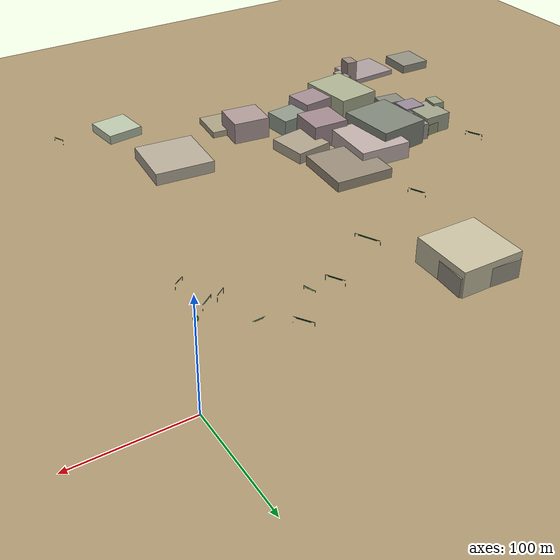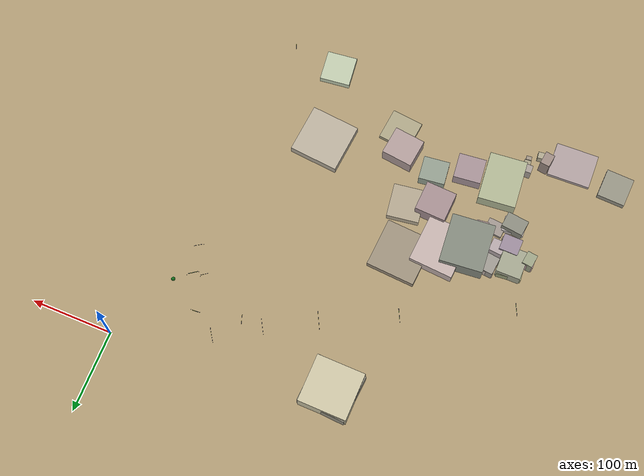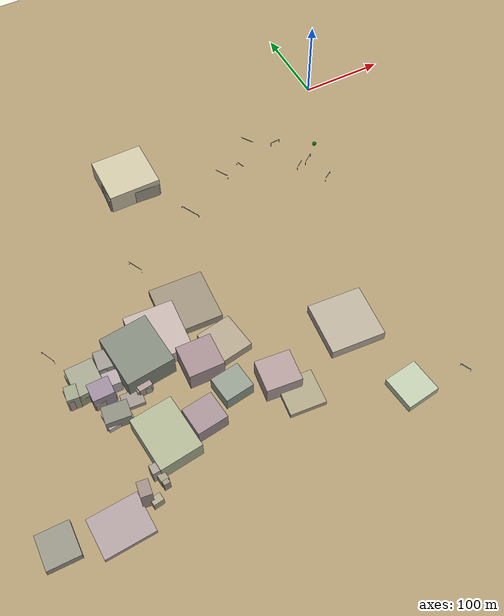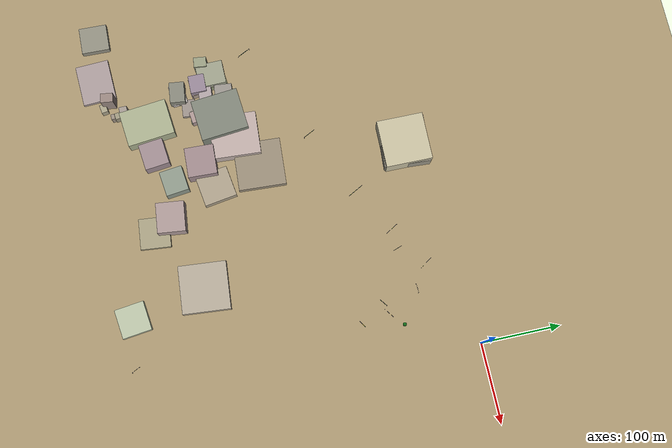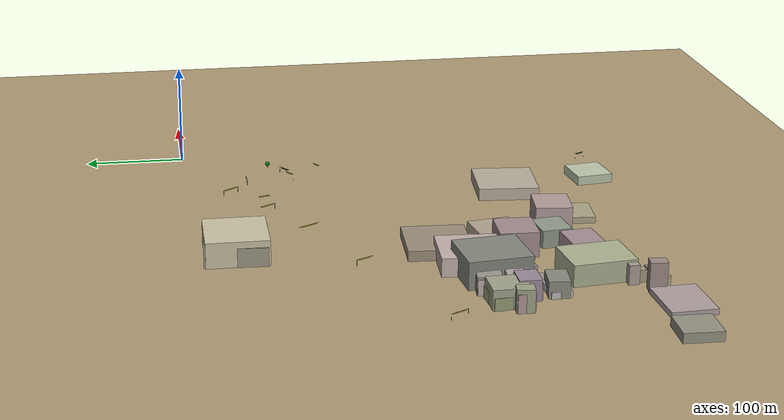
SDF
<sdf version="1.9">
 <world name="crossroad_world">
  <model name="ground_plane">
   <static>true</static>
   <pose>0 0 -0.05 0 0 0</pose>
   <link name="link">
    <collision name="collision">
     <geometry><plane><normal>0 0 1</normal><size>10000 10000</size></plane></geometry>
    </collision>
    <visual name="visual">
     <geometry><plane><normal>0 0 1</normal><size>15000 15000</size></plane></geometry>
     <material><ambient>0.68 0.60 0.45 1</ambient><diffuse>0.68 0.60 0.45 1</diffuse></material>
    </visual>
   </link>
  </model>
  <model name="gantry_24">
   <static>true</static>
   <pose>-136.055 -73.857 0 0 0 1.902</pose>
   <link name="link">
    <visual name="post_l">
     <pose>-5.700 0 2.925 0 0 0</pose>
     <geometry><cylinder><radius>0.1</radius><length>5.85</length></cylinder></geometry>
     <material><ambient>0.30 0.30 0.35 1</ambient><diffuse>0.30 0.30 0.35 1</diffuse></material>
    </visual>
    <visual name="post_r">
     <pose>5.700 0 2.925 0 0 0</pose>
     <geometry><cylinder><radius>0.1</radius><length>5.85</length></cylinder></geometry>
     <material><ambient>0.30 0.30 0.35 1</ambient><diffuse>0.30 0.30 0.35 1</diffuse></material>
    </visual>
    <visual name="beam">
     <pose>0 0 6.000 0 0 0</pose>
     <geometry><box><size>11.400 0.22 0.22</size></box></geometry>
     <material><ambient>0.30 0.30 0.35 1</ambient><diffuse>0.30 0.30 0.35 1</diffuse></material>
    </visual>
    <visual name="sign_border">
     <pose>0 -0.14 5.450 0 0 0</pose>
     <geometry><box><size>8.288 0.04 0.92</size></box></geometry>
     <material><ambient>0.90 0.85 0.10 1</ambient><diffuse>0.90 0.85 0.10 1</diffuse></material>
    </visual>
    <visual name="sign_panel">
     <pose>0 -0.15 5.450 0 0 0</pose>
     <geometry><box><size>8.208 0.05 0.86</size></box></geometry>
     <material><ambient>0.05 0.38 0.10 1</ambient><diffuse>0.05 0.38 0.10 1</diffuse></material>
    </visual>
    <collision name="col_post_l">
     <pose>-5.700 0 2.925 0 0 0</pose>
     <geometry><cylinder><radius>0.1</radius><length>5.85</length></cylinder></geometry>
    </collision>
    <collision name="col_post_r">
     <pose>5.700 0 2.925 0 0 0</pose>
     <geometry><cylinder><radius>0.1</radius><length>5.85</length></cylinder></geometry>
    </collision>
    <collision name="col_beam">
     <pose>0 0 6.000 0 0 0</pose>
     <geometry><box><size>11.400 0.22 0.22</size></box></geometry>
    </collision>
   </link>
  </model>
  <model name="gantry_25">
   <static>true</static>
   <pose>-73.724 -106.425 0 0 0 0.639</pose>
   <link name="link">
    <visual name="post_l">
     <pose>-5.700 0 2.925 0 0 0</pose>
     <geometry><cylinder><radius>0.1</radius><length>5.85</length></cylinder></geometry>
     <material><ambient>0.30 0.30 0.35 1</ambient><diffuse>0.30 0.30 0.35 1</diffuse></material>
    </visual>
    <visual name="post_r">
     <pose>5.700 0 2.925 0 0 0</pose>
     <geometry><cylinder><radius>0.1</radius><length>5.85</length></cylinder></geometry>
     <material><ambient>0.30 0.30 0.35 1</ambient><diffuse>0.30 0.30 0.35 1</diffuse></material>
    </visual>
    <visual name="beam">
     <pose>0 0 6.000 0 0 0</pose>
     <geometry><box><size>11.400 0.22 0.22</size></box></geometry>
     <material><ambient>0.30 0.30 0.35 1</ambient><diffuse>0.30 0.30 0.35 1</diffuse></material>
    </visual>
    <visual name="sign_border">
     <pose>0 -0.14 5.450 0 0 0</pose>
     <geometry><box><size>8.288 0.04 0.92</size></box></geometry>
     <material><ambient>0.90 0.85 0.10 1</ambient><diffuse>0.90 0.85 0.10 1</diffuse></material>
    </visual>
    <visual name="sign_panel">
     <pose>0 -0.15 5.450 0 0 0</pose>
     <geometry><box><size>8.208 0.05 0.86</size></box></geometry>
     <material><ambient>0.05 0.38 0.10 1</ambient><diffuse>0.05 0.38 0.10 1</diffuse></material>
    </visual>
    <collision name="col_post_l">
     <pose>-5.700 0 2.925 0 0 0</pose>
     <geometry><cylinder><radius>0.1</radius><length>5.85</length></cylinder></geometry>
    </collision>
    <collision name="col_post_r">
     <pose>5.700 0 2.925 0 0 0</pose>
     <geometry><cylinder><radius>0.1</radius><length>5.85</length></cylinder></geometry>
    </collision>
    <collision name="col_beam">
     <pose>0 0 6.000 0 0 0</pose>
     <geometry><box><size>11.400 0.22 0.22</size></box></geometry>
    </collision>
   </link>
  </model>
  <model name="gantry_26">
   <static>true</static>
   <pose>-52.633 -136.867 0 0 0 0.580</pose>
   <link name="link">
    <visual name="post_l">
     <pose>-5.700 0 2.925 0 0 0</pose>
     <geometry><cylinder><radius>0.1</radius><length>5.85</length></cylinder></geometry>
     <material><ambient>0.30 0.30 0.35 1</ambient><diffuse>0.30 0.30 0.35 1</diffuse></material>
    </visual>
    <visual name="post_r">
     <pose>5.700 0 2.925 0 0 0</pose>
     <geometry><cylinder><radius>0.1</radius><length>5.85</length></cylinder></geometry>
     <material><ambient>0.30 0.30 0.35 1</ambient><diffuse>0.30 0.30 0.35 1</diffuse></material>
    </visual>
    <visual name="beam">
     <pose>0 0 6.000 0 0 0</pose>
     <geometry><box><size>11.400 0.22 0.22</size></box></geometry>
     <material><ambient>0.30 0.30 0.35 1</ambient><diffuse>0.30 0.30 0.35 1</diffuse></material>
    </visual>
    <visual name="sign_border">
     <pose>0 -0.14 5.450 0 0 0</pose>
     <geometry><box><size>8.288 0.04 0.92</size></box></geometry>
     <material><ambient>0.90 0.85 0.10 1</ambient><diffuse>0.90 0.85 0.10 1</diffuse></material>
    </visual>
    <visual name="sign_panel">
     <pose>0 -0.15 5.450 0 0 0</pose>
     <geometry><box><size>8.208 0.05 0.86</size></box></geometry>
     <material><ambient>0.05 0.38 0.10 1</ambient><diffuse>0.05 0.38 0.10 1</diffuse></material>
    </visual>
    <collision name="col_post_l">
     <pose>-5.700 0 2.925 0 0 0</pose>
     <geometry><cylinder><radius>0.1</radius><length>5.85</length></cylinder></geometry>
    </collision>
    <collision name="col_post_r">
     <pose>5.700 0 2.925 0 0 0</pose>
     <geometry><cylinder><radius>0.1</radius><length>5.85</length></cylinder></geometry>
    </collision>
    <collision name="col_beam">
     <pose>0 0 6.000 0 0 0</pose>
     <geometry><box><size>11.400 0.22 0.22</size></box></geometry>
    </collision>
   </link>
  </model>
  <model name="gantry_31">
   <static>true</static>
   <pose>-59.800 -102.755 0 0 0 3.768</pose>
   <link name="link">
    <visual name="post_l">
     <pose>-7.300 0 2.925 0 0 0</pose>
     <geometry><cylinder><radius>0.1</radius><length>5.85</length></cylinder></geometry>
     <material><ambient>0.30 0.30 0.35 1</ambient><diffuse>0.30 0.30 0.35 1</diffuse></material>
    </visual>
    <visual name="post_r">
     <pose>7.300 0 2.925 0 0 0</pose>
     <geometry><cylinder><radius>0.1</radius><length>5.85</length></cylinder></geometry>
     <material><ambient>0.30 0.30 0.35 1</ambient><diffuse>0.30 0.30 0.35 1</diffuse></material>
    </visual>
    <visual name="beam">
     <pose>0 0 6.000 0 0 0</pose>
     <geometry><box><size>14.600 0.22 0.22</size></box></geometry>
     <material><ambient>0.30 0.30 0.35 1</ambient><diffuse>0.30 0.30 0.35 1</diffuse></material>
    </visual>
    <visual name="sign_border">
     <pose>0 -0.14 5.450 0 0 0</pose>
     <geometry><box><size>10.592 0.04 0.92</size></box></geometry>
     <material><ambient>0.90 0.85 0.10 1</ambient><diffuse>0.90 0.85 0.10 1</diffuse></material>
    </visual>
    <visual name="sign_panel">
     <pose>0 -0.15 5.450 0 0 0</pose>
     <geometry><box><size>10.512 0.05 0.86</size></box></geometry>
     <material><ambient>0.05 0.38 0.10 1</ambient><diffuse>0.05 0.38 0.10 1</diffuse></material>
    </visual>
    <collision name="col_post_l">
     <pose>-7.300 0 2.925 0 0 0</pose>
     <geometry><cylinder><radius>0.1</radius><length>5.85</length></cylinder></geometry>
    </collision>
    <collision name="col_post_r">
     <pose>7.300 0 2.925 0 0 0</pose>
     <geometry><cylinder><radius>0.1</radius><length>5.85</length></cylinder></geometry>
    </collision>
    <collision name="col_beam">
     <pose>0 0 6.000 0 0 0</pose>
     <geometry><box><size>14.600 0.22 0.22</size></box></geometry>
    </collision>
   </link>
  </model>
  <model name="gantry_32">
   <static>true</static>
   <pose>-82.200 -61.302 0 0 0 3.200</pose>
   <link name="link">
    <visual name="post_l">
     <pose>-5.700 0 2.925 0 0 0</pose>
     <geometry><cylinder><radius>0.1</radius><length>5.85</length></cylinder></geometry>
     <material><ambient>0.30 0.30 0.35 1</ambient><diffuse>0.30 0.30 0.35 1</diffuse></material>
    </visual>
    <visual name="post_r">
     <pose>5.700 0 2.925 0 0 0</pose>
     <geometry><cylinder><radius>0.1</radius><length>5.85</length></cylinder></geometry>
     <material><ambient>0.30 0.30 0.35 1</ambient><diffuse>0.30 0.30 0.35 1</diffuse></material>
    </visual>
    <visual name="beam">
     <pose>0 0 6.000 0 0 0</pose>
     <geometry><box><size>11.400 0.22 0.22</size></box></geometry>
     <material><ambient>0.30 0.30 0.35 1</ambient><diffuse>0.30 0.30 0.35 1</diffuse></material>
    </visual>
    <visual name="sign_border">
     <pose>0 -0.14 5.450 0 0 0</pose>
     <geometry><box><size>8.288 0.04 0.92</size></box></geometry>
     <material><ambient>0.90 0.85 0.10 1</ambient><diffuse>0.90 0.85 0.10 1</diffuse></material>
    </visual>
    <visual name="sign_panel">
     <pose>0 -0.15 5.450 0 0 0</pose>
     <geometry><box><size>8.208 0.05 0.86</size></box></geometry>
     <material><ambient>0.05 0.38 0.10 1</ambient><diffuse>0.05 0.38 0.10 1</diffuse></material>
    </visual>
    <collision name="col_post_l">
     <pose>-5.700 0 2.925 0 0 0</pose>
     <geometry><cylinder><radius>0.1</radius><length>5.85</length></cylinder></geometry>
    </collision>
    <collision name="col_post_r">
     <pose>5.700 0 2.925 0 0 0</pose>
     <geometry><cylinder><radius>0.1</radius><length>5.85</length></cylinder></geometry>
    </collision>
    <collision name="col_beam">
     <pose>0 0 6.000 0 0 0</pose>
     <geometry><box><size>11.400 0.22 0.22</size></box></geometry>
    </collision>
   </link>
  </model>
  <model name="gantry_49">
   <static>true</static>
   <pose>-57.756 -419.487 0 0 0 -1.121</pose>
   <link name="link">
    <visual name="post_l">
     <pose>-5.700 0 2.925 0 0 0</pose>
     <geometry><cylinder><radius>0.1</radius><length>5.85</length></cylinder></geometry>
     <material><ambient>0.30 0.30 0.35 1</ambient><diffuse>0.30 0.30 0.35 1</diffuse></material>
    </visual>
    <visual name="post_r">
     <pose>5.700 0 2.925 0 0 0</pose>
     <geometry><cylinder><radius>0.1</radius><length>5.85</length></cylinder></geometry>
     <material><ambient>0.30 0.30 0.35 1</ambient><diffuse>0.30 0.30 0.35 1</diffuse></material>
    </visual>
    <visual name="beam">
     <pose>0 0 6.000 0 0 0</pose>
     <geometry><box><size>11.400 0.22 0.22</size></box></geometry>
     <material><ambient>0.30 0.30 0.35 1</ambient><diffuse>0.30 0.30 0.35 1</diffuse></material>
    </visual>
    <visual name="sign_border">
     <pose>0 -0.14 5.450 0 0 0</pose>
     <geometry><box><size>8.288 0.04 0.92</size></box></geometry>
     <material><ambient>0.90 0.85 0.10 1</ambient><diffuse>0.90 0.85 0.10 1</diffuse></material>
    </visual>
    <visual name="sign_panel">
     <pose>0 -0.15 5.450 0 0 0</pose>
     <geometry><box><size>8.208 0.05 0.86</size></box></geometry>
     <material><ambient>0.05 0.38 0.10 1</ambient><diffuse>0.05 0.38 0.10 1</diffuse></material>
    </visual>
    <collision name="col_post_l">
     <pose>-5.700 0 2.925 0 0 0</pose>
     <geometry><cylinder><radius>0.1</radius><length>5.85</length></cylinder></geometry>
    </collision>
    <collision name="col_post_r">
     <pose>5.700 0 2.925 0 0 0</pose>
     <geometry><cylinder><radius>0.1</radius><length>5.85</length></cylinder></geometry>
    </collision>
    <collision name="col_beam">
     <pose>0 0 6.000 0 0 0</pose>
     <geometry><box><size>11.400 0.22 0.22</size></box></geometry>
    </collision>
   </link>
  </model>
  <model name="gantry_66">
   <static>true</static>
   <pose>-110.816 -43.170 0 0 0 2.161</pose>
   <link name="link">
    <visual name="post_l">
     <pose>-8.900 0 2.925 0 0 0</pose>
     <geometry><cylinder><radius>0.1</radius><length>5.85</length></cylinder></geometry>
     <material><ambient>0.30 0.30 0.35 1</ambient><diffuse>0.30 0.30 0.35 1</diffuse></material>
    </visual>
    <visual name="post_r">
     <pose>8.900 0 2.925 0 0 0</pose>
     <geometry><cylinder><radius>0.1</radius><length>5.85</length></cylinder></geometry>
     <material><ambient>0.30 0.30 0.35 1</ambient><diffuse>0.30 0.30 0.35 1</diffuse></material>
    </visual>
    <visual name="beam">
     <pose>0 0 6.000 0 0 0</pose>
     <geometry><box><size>17.800 0.22 0.22</size></box></geometry>
     <material><ambient>0.30 0.30 0.35 1</ambient><diffuse>0.30 0.30 0.35 1</diffuse></material>
    </visual>
    <visual name="sign_border">
     <pose>0 -0.14 5.450 0 0 0</pose>
     <geometry><box><size>12.896 0.04 0.92</size></box></geometry>
     <material><ambient>0.90 0.85 0.10 1</ambient><diffuse>0.90 0.85 0.10 1</diffuse></material>
    </visual>
    <visual name="sign_panel">
     <pose>0 -0.15 5.450 0 0 0</pose>
     <geometry><box><size>12.816 0.05 0.86</size></box></geometry>
     <material><ambient>0.05 0.38 0.10 1</ambient><diffuse>0.05 0.38 0.10 1</diffuse></material>
    </visual>
    <collision name="col_post_l">
     <pose>-8.900 0 2.925 0 0 0</pose>
     <geometry><cylinder><radius>0.1</radius><length>5.85</length></cylinder></geometry>
    </collision>
    <collision name="col_post_r">
     <pose>8.900 0 2.925 0 0 0</pose>
     <geometry><cylinder><radius>0.1</radius><length>5.85</length></cylinder></geometry>
    </collision>
    <collision name="col_beam">
     <pose>0 0 6.000 0 0 0</pose>
     <geometry><box><size>17.800 0.22 0.22</size></box></geometry>
    </collision>
   </link>
  </model>
  <model name="gantry_68">
   <static>true</static>
   <pose>-161.732 -75.071 0 0 0 2.102</pose>
   <link name="link">
    <visual name="post_l">
     <pose>-8.900 0 2.925 0 0 0</pose>
     <geometry><cylinder><radius>0.1</radius><length>5.85</length></cylinder></geometry>
     <material><ambient>0.30 0.30 0.35 1</ambient><diffuse>0.30 0.30 0.35 1</diffuse></material>
    </visual>
    <visual name="post_r">
     <pose>8.900 0 2.925 0 0 0</pose>
     <geometry><cylinder><radius>0.1</radius><length>5.85</length></cylinder></geometry>
     <material><ambient>0.30 0.30 0.35 1</ambient><diffuse>0.30 0.30 0.35 1</diffuse></material>
    </visual>
    <visual name="beam">
     <pose>0 0 6.000 0 0 0</pose>
     <geometry><box><size>17.800 0.22 0.22</size></box></geometry>
     <material><ambient>0.30 0.30 0.35 1</ambient><diffuse>0.30 0.30 0.35 1</diffuse></material>
    </visual>
    <visual name="sign_border">
     <pose>0 -0.14 5.450 0 0 0</pose>
     <geometry><box><size>12.896 0.04 0.92</size></box></geometry>
     <material><ambient>0.90 0.85 0.10 1</ambient><diffuse>0.90 0.85 0.10 1</diffuse></material>
    </visual>
    <visual name="sign_panel">
     <pose>0 -0.15 5.450 0 0 0</pose>
     <geometry><box><size>12.816 0.05 0.86</size></box></geometry>
     <material><ambient>0.05 0.38 0.10 1</ambient><diffuse>0.05 0.38 0.10 1</diffuse></material>
    </visual>
    <collision name="col_post_l">
     <pose>-8.900 0 2.925 0 0 0</pose>
     <geometry><cylinder><radius>0.1</radius><length>5.85</length></cylinder></geometry>
    </collision>
    <collision name="col_post_r">
     <pose>8.900 0 2.925 0 0 0</pose>
     <geometry><cylinder><radius>0.1</radius><length>5.85</length></cylinder></geometry>
    </collision>
    <collision name="col_beam">
     <pose>0 0 6.000 0 0 0</pose>
     <geometry><box><size>17.800 0.22 0.22</size></box></geometry>
    </collision>
   </link>
  </model>
  <model name="gantry_89">
   <static>true</static>
   <pose>-428.109 -209.993 0 0 0 2.025</pose>
   <link name="link">
    <visual name="post_l">
     <pose>-8.900 0 2.925 0 0 0</pose>
     <geometry><cylinder><radius>0.1</radius><length>5.85</length></cylinder></geometry>
     <material><ambient>0.30 0.30 0.35 1</ambient><diffuse>0.30 0.30 0.35 1</diffuse></material>
    </visual>
    <visual name="post_r">
     <pose>8.900 0 2.925 0 0 0</pose>
     <geometry><cylinder><radius>0.1</radius><length>5.85</length></cylinder></geometry>
     <material><ambient>0.30 0.30 0.35 1</ambient><diffuse>0.30 0.30 0.35 1</diffuse></material>
    </visual>
    <visual name="beam">
     <pose>0 0 6.000 0 0 0</pose>
     <geometry><box><size>17.800 0.22 0.22</size></box></geometry>
     <material><ambient>0.30 0.30 0.35 1</ambient><diffuse>0.30 0.30 0.35 1</diffuse></material>
    </visual>
    <visual name="sign_border">
     <pose>0 -0.14 5.450 0 0 0</pose>
     <geometry><box><size>12.896 0.04 0.92</size></box></geometry>
     <material><ambient>0.90 0.85 0.10 1</ambient><diffuse>0.90 0.85 0.10 1</diffuse></material>
    </visual>
    <visual name="sign_panel">
     <pose>0 -0.15 5.450 0 0 0</pose>
     <geometry><box><size>12.816 0.05 0.86</size></box></geometry>
     <material><ambient>0.05 0.38 0.10 1</ambient><diffuse>0.05 0.38 0.10 1</diffuse></material>
    </visual>
    <collision name="col_post_l">
     <pose>-8.900 0 2.925 0 0 0</pose>
     <geometry><cylinder><radius>0.1</radius><length>5.85</length></cylinder></geometry>
    </collision>
    <collision name="col_post_r">
     <pose>8.900 0 2.925 0 0 0</pose>
     <geometry><cylinder><radius>0.1</radius><length>5.85</length></cylinder></geometry>
    </collision>
    <collision name="col_beam">
     <pose>0 0 6.000 0 0 0</pose>
     <geometry><box><size>17.800 0.22 0.22</size></box></geometry>
    </collision>
   </link>
  </model>
  <model name="gantry_90">
   <static>true</static>
   <pose>-304.528 -149.280 0 0 0 2.029</pose>
   <link name="link">
    <visual name="post_l">
     <pose>-8.900 0 2.925 0 0 0</pose>
     <geometry><cylinder><radius>0.1</radius><length>5.85</length></cylinder></geometry>
     <material><ambient>0.30 0.30 0.35 1</ambient><diffuse>0.30 0.30 0.35 1</diffuse></material>
    </visual>
    <visual name="post_r">
     <pose>8.900 0 2.925 0 0 0</pose>
     <geometry><cylinder><radius>0.1</radius><length>5.85</length></cylinder></geometry>
     <material><ambient>0.30 0.30 0.35 1</ambient><diffuse>0.30 0.30 0.35 1</diffuse></material>
    </visual>
    <visual name="beam">
     <pose>0 0 6.000 0 0 0</pose>
     <geometry><box><size>17.800 0.22 0.22</size></box></geometry>
     <material><ambient>0.30 0.30 0.35 1</ambient><diffuse>0.30 0.30 0.35 1</diffuse></material>
    </visual>
    <visual name="sign_border">
     <pose>0 -0.14 5.450 0 0 0</pose>
     <geometry><box><size>12.896 0.04 0.92</size></box></geometry>
     <material><ambient>0.90 0.85 0.10 1</ambient><diffuse>0.90 0.85 0.10 1</diffuse></material>
    </visual>
    <visual name="sign_panel">
     <pose>0 -0.15 5.450 0 0 0</pose>
     <geometry><box><size>12.816 0.05 0.86</size></box></geometry>
     <material><ambient>0.05 0.38 0.10 1</ambient><diffuse>0.05 0.38 0.10 1</diffuse></material>
    </visual>
    <collision name="col_post_l">
     <pose>-8.900 0 2.925 0 0 0</pose>
     <geometry><cylinder><radius>0.1</radius><length>5.85</length></cylinder></geometry>
    </collision>
    <collision name="col_post_r">
     <pose>8.900 0 2.925 0 0 0</pose>
     <geometry><cylinder><radius>0.1</radius><length>5.85</length></cylinder></geometry>
    </collision>
    <collision name="col_beam">
     <pose>0 0 6.000 0 0 0</pose>
     <geometry><box><size>17.800 0.22 0.22</size></box></geometry>
    </collision>
   </link>
  </model>
  <model name="gantry_91">
   <static>true</static>
   <pose>-218.628 -109.101 0 0 0 2.057</pose>
   <link name="link">
    <visual name="post_l">
     <pose>-12.100 0 2.925 0 0 0</pose>
     <geometry><cylinder><radius>0.1</radius><length>5.85</length></cylinder></geometry>
     <material><ambient>0.30 0.30 0.35 1</ambient><diffuse>0.30 0.30 0.35 1</diffuse></material>
    </visual>
    <visual name="post_r">
     <pose>12.100 0 2.925 0 0 0</pose>
     <geometry><cylinder><radius>0.1</radius><length>5.85</length></cylinder></geometry>
     <material><ambient>0.30 0.30 0.35 1</ambient><diffuse>0.30 0.30 0.35 1</diffuse></material>
    </visual>
    <visual name="beam">
     <pose>0 0 6.000 0 0 0</pose>
     <geometry><box><size>24.200 0.22 0.22</size></box></geometry>
     <material><ambient>0.30 0.30 0.35 1</ambient><diffuse>0.30 0.30 0.35 1</diffuse></material>
    </visual>
    <visual name="sign_border">
     <pose>0 -0.14 5.450 0 0 0</pose>
     <geometry><box><size>17.504 0.04 0.92</size></box></geometry>
     <material><ambient>0.90 0.85 0.10 1</ambient><diffuse>0.90 0.85 0.10 1</diffuse></material>
    </visual>
    <visual name="sign_panel">
     <pose>0 -0.15 5.450 0 0 0</pose>
     <geometry><box><size>17.424 0.05 0.86</size></box></geometry>
     <material><ambient>0.05 0.38 0.10 1</ambient><diffuse>0.05 0.38 0.10 1</diffuse></material>
    </visual>
    <collision name="col_post_l">
     <pose>-12.100 0 2.925 0 0 0</pose>
     <geometry><cylinder><radius>0.1</radius><length>5.85</length></cylinder></geometry>
    </collision>
    <collision name="col_post_r">
     <pose>12.100 0 2.925 0 0 0</pose>
     <geometry><cylinder><radius>0.1</radius><length>5.85</length></cylinder></geometry>
    </collision>
    <collision name="col_beam">
     <pose>0 0 6.000 0 0 0</pose>
     <geometry><box><size>24.200 0.22 0.22</size></box></geometry>
    </collision>
   </link>
  </model>
  <model name="tree_189">
   <static>true</static>
   <pose>-41.859 -86.806 0 0 0 0</pose>
   <link name="link">
    <visual name="trunk">
     <pose>0 0 2.022 0 0 0</pose>
     <geometry><cylinder><radius>0.177</radius><length>4.043</length></cylinder></geometry>
     <material><ambient>0.38 0.22 0.08 1</ambient><diffuse>0.38 0.22 0.08 1</diffuse></material>
    </visual>
    <visual name="canopy">
     <pose>0 0 5.604 0 0 0</pose>
     <geometry><sphere><radius>2.401</radius></sphere></geometry>
     <material><ambient>0.08 0.44 0.10 1</ambient><diffuse>0.08 0.44 0.10 1</diffuse></material>
    </visual>
    <collision name="col">
     <pose>0 0 2.022 0 0 0</pose>
     <geometry><cylinder><radius>0.177</radius><length>4.043</length></cylinder></geometry>
    </collision>
   </link>
  </model>
  <model name="building_197">
   <static>true</static>
   <pose>-265.700 -36.101 12.331 0 0 -0.009</pose>
   <link name="link">
    <visual name="body">
     <geometry><box><size>60.00 58.66 24.66</size></box></geometry>
     <material><ambient>0.79 0.76 0.64 1</ambient><diffuse>0.79 0.76 0.64 1</diffuse></material>
    </visual>
    <collision name="col"><geometry><box><size>60.00 58.66 24.66</size></box></geometry></collision>
   </link>
  </model>
  <model name="building_198">
   <static>true</static>
   <pose>-265.700 -36.101 9.115 0 0 -0.064</pose>
   <link name="link">
    <visual name="body">
     <geometry><box><size>60.00 58.66 18.23</size></box></geometry>
     <material><ambient>0.61 0.59 0.53 1</ambient><diffuse>0.61 0.59 0.53 1</diffuse></material>
    </visual>
    <collision name="col"><geometry><box><size>60.00 58.66 18.23</size></box></geometry></collision>
   </link>
  </model>
  <model name="building_202">
   <static>true</static>
   <pose>-277.270 -328.889 8.700 0 0 0.122</pose>
   <link name="link">
    <visual name="body">
     <geometry><box><size>31.83 28.92 17.40</size></box></geometry>
     <material><ambient>0.57 0.61 0.55 1</ambient><diffuse>0.57 0.61 0.55 1</diffuse></material>
    </visual>
    <collision name="col"><geometry><box><size>31.83 28.92 17.40</size></box></geometry></collision>
   </link>
  </model>
  <model name="building_224">
   <static>true</static>
   <pose>-316.053 -347.015 9.845 0 0 0.111</pose>
   <link name="link">
    <visual name="body">
     <geometry><box><size>33.46 30.91 19.69</size></box></geometry>
     <material><ambient>0.64 0.56 0.58 1</ambient><diffuse>0.64 0.56 0.58 1</diffuse></material>
    </visual>
    <collision name="col"><geometry><box><size>33.46 30.91 19.69</size></box></geometry></collision>
   </link>
  </model>
  <model name="building_225">
   <static>true</static>
   <pose>-357.692 -348.092 10.376 0 0 0.101</pose>
   <link name="link">
    <visual name="body">
     <geometry><box><size>45.72 60.00 20.75</size></box></geometry>
     <material><ambient>0.68 0.70 0.57 1</ambient><diffuse>0.68 0.70 0.57 1</diffuse></material>
    </visual>
    <collision name="col"><geometry><box><size>45.72 60.00 20.75</size></box></geometry></collision>
   </link>
  </model>
  <model name="building_230">
   <static>true</static>
   <pose>-376.930 -389.393 6.703 0 0 0.074</pose>
   <link name="link">
    <visual name="body">
     <geometry><box><size>6.56 4.72 13.41</size></box></geometry>
     <material><ambient>0.62 0.57 0.51 1</ambient><diffuse>0.62 0.57 0.51 1</diffuse></material>
    </visual>
    <collision name="col"><geometry><box><size>6.56 4.72 13.41</size></box></geometry></collision>
   </link>
  </model>
  <model name="building_231">
   <static>true</static>
   <pose>-381.280 -374.490 9.279 0 0 0.033</pose>
   <link name="link">
    <visual name="body">
     <geometry><box><size>8.52 9.85 18.56</size></box></geometry>
     <material><ambient>0.65 0.61 0.58 1</ambient><diffuse>0.65 0.61 0.58 1</diffuse></material>
    </visual>
    <collision name="col"><geometry><box><size>8.52 9.85 18.56</size></box></geometry></collision>
   </link>
  </model>
  <model name="building_232">
   <static>true</static>
   <pose>-377.330 -382.979 5.993 0 0 0.129</pose>
   <link name="link">
    <visual name="body">
     <geometry><box><size>8.11 8.99 11.99</size></box></geometry>
     <material><ambient>0.64 0.61 0.51 1</ambient><diffuse>0.64 0.61 0.51 1</diffuse></material>
    </visual>
    <collision name="col"><geometry><box><size>8.11 8.99 11.99</size></box></geometry></collision>
   </link>
  </model>
  <model name="building_233">
   <static>true</static>
   <pose>-391.073 -399.340 5.611 0 0 0.140</pose>
   <link name="link">
    <visual name="body">
     <geometry><box><size>10.88 8.09 11.22</size></box></geometry>
     <material><ambient>0.68 0.65 0.55 1</ambient><diffuse>0.68 0.65 0.55 1</diffuse></material>
    </visual>
    <collision name="col"><geometry><box><size>10.88 8.09 11.22</size></box></geometry></collision>
   </link>
  </model>
  <model name="building_234">
   <static>true</static>
   <pose>-398.155 -390.818 13.947 0 0 -0.127</pose>
   <link name="link">
    <visual name="body">
     <geometry><box><size>11.61 15.59 27.89</size></box></geometry>
     <material><ambient>0.61 0.54 0.51 1</ambient><diffuse>0.61 0.54 0.51 1</diffuse></material>
    </visual>
    <collision name="col"><geometry><box><size>11.61 15.59 27.89</size></box></geometry></collision>
   </link>
  </model>
  <model name="building_383">
   <static>true</static>
   <pose>-421.954 -267.294 8.794 0 0 0.042</pose>
   <link name="link">
    <visual name="body">
     <geometry><box><size>12.70 15.93 17.59</size></box></geometry>
     <material><ambient>0.70 0.59 0.59 1</ambient><diffuse>0.70 0.59 0.59 1</diffuse></material>
    </visual>
    <collision name="col"><geometry><box><size>12.70 15.93 17.59</size></box></geometry></collision>
   </link>
  </model>
  <model name="building_384">
   <static>true</static>
   <pose>-421.954 -267.294 10.791 0 0 -0.124</pose>
   <link name="link">
    <visual name="body">
     <geometry><box><size>12.70 15.93 21.58</size></box></geometry>
     <material><ambient>0.61 0.63 0.52 1</ambient><diffuse>0.61 0.63 0.52 1</diffuse></material>
    </visual>
    <collision name="col"><geometry><box><size>12.70 15.93 21.58</size></box></geometry></collision>
   </link>
  </model>
  <model name="building_385">
   <static>true</static>
   <pose>-395.130 -276.200 5.582 0 0 0.110</pose>
   <link name="link">
    <visual name="body">
     <geometry><box><size>23.00 20.17 11.16</size></box></geometry>
     <material><ambient>0.69 0.62 0.56 1</ambient><diffuse>0.69 0.62 0.56 1</diffuse></material>
    </visual>
    <collision name="col"><geometry><box><size>23.00 20.17 11.16</size></box></geometry></collision>
   </link>
  </model>
  <model name="building_386">
   <static>true</static>
   <pose>-395.130 -276.200 10.108 0 0 -0.011</pose>
   <link name="link">
    <visual name="body">
     <geometry><box><size>23.00 20.17 20.22</size></box></geometry>
     <material><ambient>0.60 0.54 0.60 1</ambient><diffuse>0.60 0.54 0.60 1</diffuse></material>
    </visual>
    <collision name="col"><geometry><box><size>23.00 20.17 20.22</size></box></geometry></collision>
   </link>
  </model>
  <model name="building_387">
   <static>true</static>
   <pose>-381.170 -268.936 8.544 0 0 -0.071</pose>
   <link name="link">
    <visual name="body">
     <geometry><box><size>16.48 16.34 17.09</size></box></geometry>
     <material><ambient>0.70 0.65 0.66 1</ambient><diffuse>0.70 0.65 0.66 1</diffuse></material>
    </visual>
    <collision name="col"><geometry><box><size>16.48 16.34 17.09</size></box></geometry></collision>
   </link>
  </model>
  <model name="building_388">
   <static>true</static>
   <pose>-390.652 -303.844 8.038 0 0 -0.114</pose>
   <link name="link">
    <visual name="body">
     <geometry><box><size>26.63 19.07 16.08</size></box></geometry>
     <material><ambient>0.54 0.54 0.49 1</ambient><diffuse>0.54 0.54 0.49 1</diffuse></material>
    </visual>
    <collision name="col"><geometry><box><size>26.63 19.07 16.08</size></box></geometry></collision>
   </link>
  </model>
  <model name="building_389">
   <static>true</static>
   <pose>-390.652 -303.844 3.252 0 0 0.072</pose>
   <link name="link">
    <visual name="body">
     <geometry><box><size>26.63 19.07 6.50</size></box></geometry>
     <material><ambient>0.76 0.73 0.72 1</ambient><diffuse>0.76 0.73 0.72 1</diffuse></material>
    </visual>
    <collision name="col"><geometry><box><size>26.63 19.07 6.50</size></box></geometry></collision>
   </link>
  </model>
  <model name="building_390">
   <static>true</static>
   <pose>-370.248 -293.695 2.789 0 0 -0.089</pose>
   <link name="link">
    <visual name="body">
     <geometry><box><size>21.99 16.79 5.58</size></box></geometry>
     <material><ambient>0.62 0.58 0.55 1</ambient><diffuse>0.62 0.58 0.55 1</diffuse></material>
    </visual>
    <collision name="col"><geometry><box><size>21.99 16.79 5.58</size></box></geometry></collision>
   </link>
  </model>
  <model name="building_391">
   <static>true</static>
   <pose>-355.756 -281.284 5.133 0 0 -0.047</pose>
   <link name="link">
    <visual name="body">
     <geometry><box><size>14.90 23.75 10.27</size></box></geometry>
     <material><ambient>0.64 0.67 0.58 1</ambient><diffuse>0.64 0.67 0.58 1</diffuse></material>
    </visual>
    <collision name="col"><geometry><box><size>14.90 23.75 10.27</size></box></geometry></collision>
   </link>
  </model>
  <model name="building_392">
   <static>true</static>
   <pose>-355.756 -281.284 6.513 0 0 0.130</pose>
   <link name="link">
    <visual name="body">
     <geometry><box><size>14.90 23.75 13.03</size></box></geometry>
     <material><ambient>0.69 0.60 0.59 1</ambient><diffuse>0.69 0.60 0.59 1</diffuse></material>
    </visual>
    <collision name="col"><geometry><box><size>14.90 23.75 13.03</size></box></geometry></collision>
   </link>
  </model>
  <model name="building_453">
   <static>true</static>
   <pose>-118.288 -411.312 4.589 0 0 0.121</pose>
   <link name="link">
    <visual name="body">
     <geometry><box><size>36.96 37.07 9.18</size></box></geometry>
     <material><ambient>0.74 0.78 0.67 1</ambient><diffuse>0.74 0.78 0.67 1</diffuse></material>
    </visual>
    <collision name="col"><geometry><box><size>36.96 37.07 9.18</size></box></geometry></collision>
   </link>
  </model>
  <model name="building_457">
   <static>true</static>
   <pose>-138.543 -318.144 6.117 0 0 -0.087</pose>
   <link name="link">
    <visual name="body">
     <geometry><box><size>60.00 60.00 12.23</size></box></geometry>
     <material><ambient>0.72 0.68 0.61 1</ambient><diffuse>0.72 0.68 0.61 1</diffuse></material>
    </visual>
    <collision name="col"><geometry><box><size>60.00 60.00 12.23</size></box></geometry></collision>
   </link>
  </model>
  <model name="building_464">
   <static>true</static>
   <pose>-293.662 -290.860 12.240 0 0 -0.041</pose>
   <link name="link">
    <visual name="body">
     <geometry><box><size>37.90 36.62 24.48</size></box></geometry>
     <material><ambient>0.64 0.55 0.56 1</ambient><diffuse>0.64 0.55 0.56 1</diffuse></material>
    </visual>
    <collision name="col"><geometry><box><size>37.90 36.62 24.48</size></box></geometry></collision>
   </link>
  </model>
  <model name="building_465">
   <static>true</static>
   <pose>-261.119 -279.318 5.586 0 0 0.150</pose>
   <link name="link">
    <visual name="body">
     <geometry><box><size>39.36 41.36 11.17</size></box></geometry>
     <material><ambient>0.69 0.64 0.55 1</ambient><diffuse>0.69 0.64 0.55 1</diffuse></material>
    </visual>
    <collision name="col"><geometry><box><size>39.36 41.36 11.17</size></box></geometry></collision>
   </link>
  </model>
  <model name="building_466">
   <static>true</static>
   <pose>-379.996 -245.709 8.536 0 0 -0.103</pose>
   <link name="link">
    <visual name="body">
     <geometry><box><size>16.56 22.09 17.07</size></box></geometry>
     <material><ambient>0.61 0.59 0.56 1</ambient><diffuse>0.61 0.59 0.56 1</diffuse></material>
    </visual>
    <collision name="col"><geometry><box><size>16.56 22.09 17.07</size></box></geometry></collision>
   </link>
  </model>
  <model name="building_467">
   <static>true</static>
   <pose>-379.996 -245.709 7.505 0 0 -0.030</pose>
   <link name="link">
    <visual name="body">
     <geometry><box><size>16.56 22.09 15.01</size></box></geometry>
     <material><ambient>0.74 0.68 0.65 1</ambient><diffuse>0.74 0.68 0.65 1</diffuse></material>
    </visual>
    <collision name="col"><geometry><box><size>16.56 22.09 15.01</size></box></geometry></collision>
   </link>
  </model>
  <model name="building_468">
   <static>true</static>
   <pose>-347.098 -256.140 13.279 0 0 0.094</pose>
   <link name="link">
    <visual name="body">
     <geometry><box><size>52.77 60.00 26.56</size></box></geometry>
     <material><ambient>0.51 0.53 0.48 1</ambient><diffuse>0.51 0.53 0.48 1</diffuse></material>
    </visual>
    <collision name="col"><geometry><box><size>52.77 60.00 26.56</size></box></geometry></collision>
   </link>
  </model>
  <model name="building_469">
   <static>true</static>
   <pose>-319.227 -243.108 8.894 0 0 -0.063</pose>
   <link name="link">
    <visual name="body">
     <geometry><box><size>54.25 60.00 17.79</size></box></geometry>
     <material><ambient>0.76 0.69 0.67 1</ambient><diffuse>0.76 0.69 0.67 1</diffuse></material>
    </visual>
    <collision name="col"><geometry><box><size>54.25 60.00 17.79</size></box></geometry></collision>
   </link>
  </model>
  <model name="building_470">
   <static>true</static>
   <pose>-277.489 -220.165 5.065 0 0 -0.058</pose>
   <link name="link">
    <visual name="body">
     <geometry><box><size>60.00 60.00 10.13</size></box></geometry>
     <material><ambient>0.61 0.56 0.48 1</ambient><diffuse>0.61 0.56 0.48 1</diffuse></material>
    </visual>
    <collision name="col"><geometry><box><size>60.00 60.00 10.13</size></box></geometry></collision>
   </link>
  </model>
  <model name="building_471">
   <static>true</static>
   <pose>-232.042 -341.135 11.046 0 0 -0.114</pose>
   <link name="link">
    <visual name="body">
     <geometry><box><size>38.10 35.14 22.09</size></box></geometry>
     <material><ambient>0.69 0.61 0.60 1</ambient><diffuse>0.69 0.61 0.60 1</diffuse></material>
    </visual>
    <collision name="col"><geometry><box><size>38.10 35.14 22.09</size></box></geometry></collision>
   </link>
  </model>
  <model name="building_472">
   <static>true</static>
   <pose>-219.604 -365.844 3.150 0 0 -0.101</pose>
   <link name="link">
    <visual name="body">
     <geometry><box><size>38.80 38.19 6.30</size></box></geometry>
     <material><ambient>0.67 0.64 0.52 1</ambient><diffuse>0.67 0.64 0.52 1</diffuse></material>
    </visual>
    <collision name="col"><geometry><box><size>38.80 38.19 6.30</size></box></geometry></collision>
   </link>
  </model>
  <model name="building_473">
   <static>true</static>
   <pose>-429.245 -404.254 2.753 0 0 0.044</pose>
   <link name="link">
    <visual name="body">
     <geometry><box><size>52.30 42.24 5.51</size></box></geometry>
     <material><ambient>0.68 0.62 0.62 1</ambient><diffuse>0.68 0.62 0.62 1</diffuse></material>
    </visual>
    <collision name="col"><geometry><box><size>52.30 42.24 5.51</size></box></geometry></collision>
   </link>
  </model>
  <model name="building_476">
   <static>true</static>
   <pose>-486.389 -395.678 4.634 0 0 -0.030</pose>
   <link name="link">
    <visual name="body">
     <geometry><box><size>33.95 35.26 9.27</size></box></geometry>
     <material><ambient>0.58 0.57 0.51 1</ambient><diffuse>0.58 0.57 0.51 1</diffuse></material>
    </visual>
    <collision name="col"><geometry><box><size>33.95 35.26 9.27</size></box></geometry></collision>
   </link>
  </model>
  <model name="building_598">
   <static>true</static>
   <pose>-404.364 -257.133 5.824 0 0 0.102</pose>
   <link name="link">
    <visual name="body">
     <geometry><box><size>29.91 34.45 11.65</size></box></geometry>
     <material><ambient>0.59 0.62 0.47 1</ambient><diffuse>0.59 0.62 0.47 1</diffuse></material>
    </visual>
    <collision name="col"><geometry><box><size>29.91 34.45 11.65</size></box></geometry></collision>
   </link>
  </model>
  <model name="building_599">
   <static>true</static>
   <pose>-404.364 -257.133 9.537 0 0 0.013</pose>
   <link name="link">
    <visual name="body">
     <geometry><box><size>29.91 34.45 19.07</size></box></geometry>
     <material><ambient>0.63 0.64 0.55 1</ambient><diffuse>0.63 0.64 0.55 1</diffuse></material>
    </visual>
    <collision name="col"><geometry><box><size>29.91 34.45 19.07</size></box></geometry></collision>
   </link>
  </model>
 </world>
</sdf>
